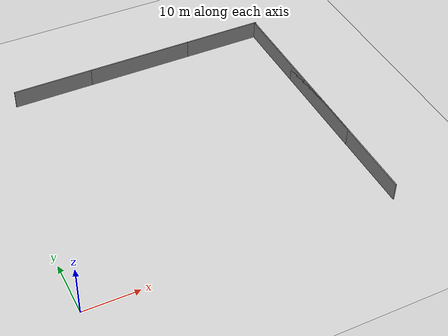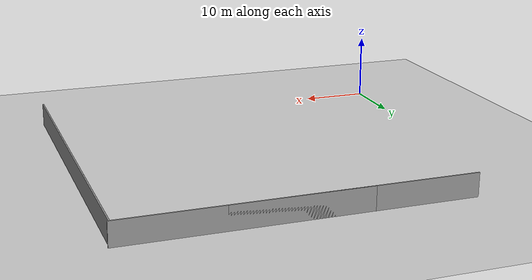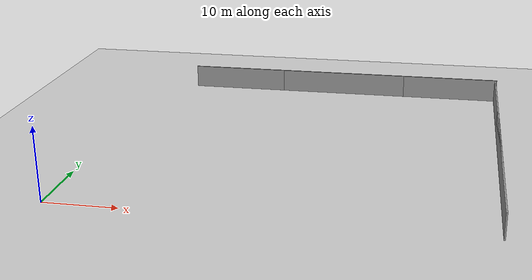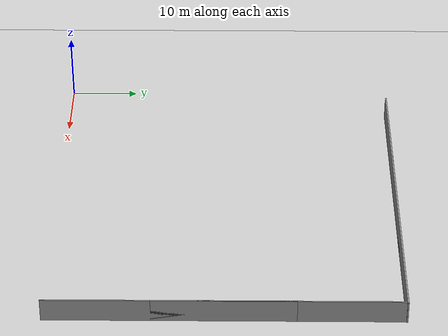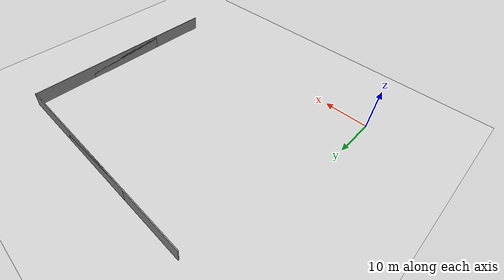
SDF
<sdf version="1.6">
 <world name="default">
  <model name="ground_plane">
   <static>1</static>
   <link name="link">
    <collision name="collision">
     <geometry><plane><normal>0 0 1</normal><size>100 100</size></plane></geometry>
     <surface><friction><ode><mu>100</mu><mu2>50</mu2></ode></friction></surface>
    </collision>
    <visual name="visual">
     <cast_shadows>0</cast_shadows>
     <geometry><plane><normal>0 0 1</normal><size>100 100</size></plane></geometry>
     <material>
      <script><uri>file://media/materials/scripts/gazebo.material</uri><name>Gazebo/Grey</name></script>
     </material>
    </visual>
    <velocity_decay><linear>0</linear><angular>0</angular></velocity_decay>
   </link>
  </model>
  <model name="wall_clone_0_clone_clone">
   <link name="link">
    <pose>0 0 1.4 0 -0 0</pose>
    <inertial>
     <mass>1</mass>
     <inertia><ixx>1</ixx><ixy>0</ixy><ixz>0</ixz><iyy>1</iyy><iyz>0</iyz><izz>1</izz></inertia>
    </inertial>
    <visual name="ModelPreview_1::link::visual_1">
     <cast_shadows>0</cast_shadows>
     <geometry><box><size>20 0.2 4</size></box></geometry>
     <material>
      <script>
       <uri>model://grey_wall/materials/scripts</uri>
       <uri>model://grey_wall/materials/textures</uri>
       <name>vrc/grey_wall</name>
      </script>
      <ambient>1 1 1 1</ambient>
      <diffuse>1 1 1 1</diffuse>
      <specular>0 0 0 1</specular>
      <emissive>0 0 0 1</emissive>
      <shader type="vertex"><normal_map>__default__</normal_map></shader>
     </material>
    </visual>
    <visual name="visual">
     <cast_shadows>0</cast_shadows>
     <geometry><box><size>50 0.2 4</size></box></geometry>
     <material>
      <script>
       <uri>model://grey_wall/materials/scripts</uri>
       <uri>model://grey_wall/materials/textures</uri>
       <name>vrc/grey_wall</name>
      </script>
      <ambient>1 1 1 1</ambient>
      <diffuse>1 1 1 1</diffuse>
      <specular>0 0 0 1</specular>
      <emissive>0 0 0 1</emissive>
      <shader type="vertex"><normal_map>__default__</normal_map></shader>
     </material>
    </visual>
    <collision name="collision">
     <geometry><box><size>50 0.2 4</size></box></geometry>
     <surface>
      <friction>
       <ode><mu>1</mu><mu2>1</mu2><fdir1>0 0 0</fdir1><slip1>0</slip1><slip2>0</slip2></ode>
       <torsional>
        <coefficient>1</coefficient>
        <patch_radius>0</patch_radius>
        <surface_radius>0</surface_radius>
        <use_patch_radius>1</use_patch_radius>
        <ode><slip>0</slip></ode>
       </torsional>
      </friction>
      <bounce><restitution_coefficient>0</restitution_coefficient><threshold>1e+06</threshold></bounce>
      <contact>
       <collide_without_contact>0</collide_without_contact>
       <collide_without_contact_bitmask>1</collide_without_contact_bitmask>
       <collide_bitmask>1</collide_bitmask>
       <ode>
        <soft_cfm>0</soft_cfm>
        <soft_erp>0.2</soft_erp>
        <kp>1e+13</kp>
        <kd>1</kd>
        <max_vel>0.01</max_vel>
        <min_depth>0</min_depth>
       </ode>
       <bullet>
        <split_impulse>1</split_impulse>
        <split_impulse_penetration_threshold>-0.01</split_impulse_penetration_threshold>
        <soft_cfm>0</soft_cfm>
        <soft_erp>0.2</soft_erp>
        <kp>1e+13</kp>
        <kd>1</kd>
       </bullet>
      </contact>
     </surface>
    </collision>
   </link>
   <static>1</static>
   <pose>55.8454 24.5096 0 0 -0 1.57</pose>
  </model>
  <model name="wall_clone_0_clone_0">
   <link name="link">
    <pose>0 0 1.4 0 -0 0</pose>
    <inertial>
     <mass>1</mass>
     <inertia><ixx>1</ixx><ixy>0</ixy><ixz>0</ixz><iyy>1</iyy><iyz>0</iyz><izz>1</izz></inertia>
    </inertial>
    <visual name="ModelPreview_1::link::visual_1">
     <cast_shadows>0</cast_shadows>
     <geometry><box><size>20 0.2 4</size></box></geometry>
     <material>
      <script>
       <uri>model://grey_wall/materials/scripts</uri>
       <uri>model://grey_wall/materials/textures</uri>
       <name>vrc/grey_wall</name>
      </script>
      <ambient>1 1 1 1</ambient>
      <diffuse>1 1 1 1</diffuse>
      <specular>0 0 0 1</specular>
      <emissive>0 0 0 1</emissive>
      <shader type="vertex"><normal_map>__default__</normal_map></shader>
     </material>
    </visual>
    <visual name="visual">
     <cast_shadows>0</cast_shadows>
     <geometry><box><size>50 0.2 4</size></box></geometry>
     <material>
      <script>
       <uri>model://grey_wall/materials/scripts</uri>
       <uri>model://grey_wall/materials/textures</uri>
       <name>vrc/grey_wall</name>
      </script>
      <ambient>1 1 1 1</ambient>
      <diffuse>1 1 1 1</diffuse>
      <specular>0 0 0 1</specular>
      <emissive>0 0 0 1</emissive>
      <shader type="vertex"><normal_map>__default__</normal_map></shader>
     </material>
    </visual>
    <collision name="collision">
     <geometry><box><size>50 0.2 4</size></box></geometry>
     <surface>
      <friction>
       <ode><mu>1</mu><mu2>1</mu2><fdir1>0 0 0</fdir1><slip1>0</slip1><slip2>0</slip2></ode>
       <torsional>
        <coefficient>1</coefficient>
        <patch_radius>0</patch_radius>
        <surface_radius>0</surface_radius>
        <use_patch_radius>1</use_patch_radius>
        <ode><slip>0</slip></ode>
       </torsional>
      </friction>
      <bounce><restitution_coefficient>0</restitution_coefficient><threshold>1e+06</threshold></bounce>
      <contact>
       <collide_without_contact>0</collide_without_contact>
       <collide_without_contact_bitmask>1</collide_without_contact_bitmask>
       <collide_bitmask>1</collide_bitmask>
       <ode>
        <soft_cfm>0</soft_cfm>
        <soft_erp>0.2</soft_erp>
        <kp>1e+13</kp>
        <kd>1</kd>
        <max_vel>0.01</max_vel>
        <min_depth>0</min_depth>
       </ode>
       <bullet>
        <split_impulse>1</split_impulse>
        <split_impulse_penetration_threshold>-0.01</split_impulse_penetration_threshold>
        <soft_cfm>0</soft_cfm>
        <soft_erp>0.2</soft_erp>
        <kp>1e+13</kp>
        <kd>1</kd>
       </bullet>
      </contact>
     </surface>
    </collision>
   </link>
   <static>1</static>
   <pose>31.1336 49.4754 0 0 -0 0</pose>
  </model>
 </world>
</sdf>
